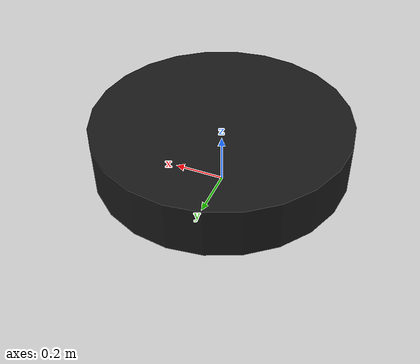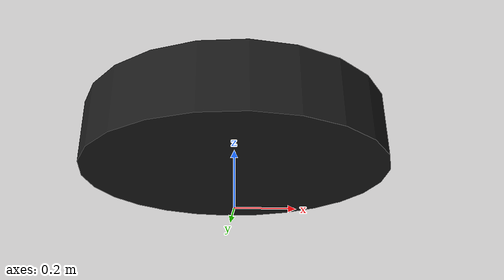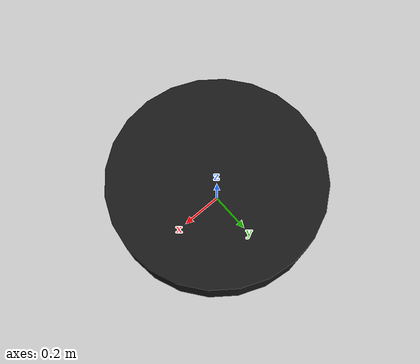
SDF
<?xml version="1.0" ?>
<sdf version="1.9">
  <model name="hexacopter_agricultural">
    <pose>0 0 0.2 0 0 0</pose>
    <self_collide>false</self_collide>
    <static>false</static>

    <link name="base_link">
      <inertial>
        <!-- Requirement: Inertial Matrix reflecting 15kg load -->
        <mass>15.0</mass>
        <inertia>
          <ixx>0.8</ixx>
          <ixy>0</ixy>
          <ixz>0</ixz>
          <iyy>0.8</iyy>
          <iyz>0</iyz>
          <izz>1.5</izz>
        </inertia>
      </inertial>

      <visual name="body_visual">
        <geometry>
          <cylinder>
            <radius>0.5</radius>
            <length>0.2</length>
          </cylinder>
        </geometry>
        <material>
          <ambient>0.1 0.1 0.1 1</ambient>
          <diffuse>0.1 0.1 0.1 1</diffuse>
        </material>
      </visual>
      <collision name="body_collision">
        <geometry>
          <cylinder>
            <radius>0.5</radius>
            <length>0.2</length>
          </cylinder>
        </geometry>
      </collision>

      <!-- Requirement: GPS/RTK Noise -->
      <sensor name="navsat" type="navsat">
        <always_on>1</always_on>
        <update_rate>10</update_rate>
        <topic>navsat</topic>
        <navsat>
          <position_sensing>
            <horizontal>
              <noise type="gaussian">
                <mean>0.0</mean>
                <stddev>0.05</stddev> <!-- RTK precision simulation -->
              </noise>
            </horizontal>
            <vertical>
              <noise type="gaussian">
                <mean>0.0</mean>
                <stddev>0.05</stddev>
              </noise>
            </vertical>
          </position_sensing>
        </navsat>
      </sensor>
    </link>

    <!-- Requirement: Thrust Mapping (6 Motors) -->

    <!-- Motor 0 (CCW) -->
    <link name="rotor_0">
      <pose>0.4 0 0.1 0 0 0</pose>
      <inertial>
        <mass>0.05</mass>
        <inertia>
          <ixx>9.75e-07</ixx>
          <iyy>0.000273104</iyy>
          <izz>0.000274004</izz>
        </inertia>
      </inertial>
    </link>
    <joint name="rotor_0_joint" type="revolute">
      <child>rotor_0</child>
      <parent>base_link</parent>
      <axis>
        <xyz>0 0 1</xyz>
        <limit>
          <lower>-1e+16</lower>
          <upper>1e+16</upper>
        </limit>
      </axis>
    </joint>
    <plugin filename="gz-sim-multicopter-motor-model-system" name="gz::sim::systems::MulticopterMotorModel">
      <robotNamespace>hexacopter_agricultural</robotNamespace>
      <jointName>rotor_0_joint</jointName>
      <linkName>rotor_0</linkName>
      <turningDirection>ccw</turningDirection>
      <timeConstantUp>0.0125</timeConstantUp>
      <timeConstantDown>0.025</timeConstantDown>
      <maxRotVelocity>1100</maxRotVelocity>
      <motorConstant>8.54858e-06</motorConstant>
      <momentConstant>0.06</momentConstant>
      <commandSubTopic>command/motor_speed</commandSubTopic>
      <motorNumber>0</motorNumber>
      <rotorDragCoefficient>0.000175</rotorDragCoefficient>
      <rollingMomentCoefficient>1.0e-6</rollingMomentCoefficient>
    </plugin>

    <!-- Motor 1 (CW) -->
    <link name="rotor_1">
      <pose>0.2 0.346 0.1 0 0 0</pose>
      <inertial>
        <mass>0.05</mass>
        <inertia>
          <ixx>9.75e-07</ixx>
          <iyy>0.000273104</iyy>
          <izz>0.000274004</izz>
        </inertia>
      </inertial>
    </link>
    <joint name="rotor_1_joint" type="revolute">
      <child>rotor_1</child>
      <parent>base_link</parent>
      <axis>
        <xyz>0 0 1</xyz>
        <limit>
          <lower>-1e+16</lower>
          <upper>1e+16</upper>
        </limit>
      </axis>
    </joint>
    <plugin filename="gz-sim-multicopter-motor-model-system" name="gz::sim::systems::MulticopterMotorModel">
      <robotNamespace>hexacopter_agricultural</robotNamespace>
      <jointName>rotor_1_joint</jointName>
      <linkName>rotor_1</linkName>
      <turningDirection>cw</turningDirection>
      <timeConstantUp>0.0125</timeConstantUp>
      <timeConstantDown>0.025</timeConstantDown>
      <maxRotVelocity>1100</maxRotVelocity>
      <motorConstant>8.54858e-06</motorConstant>
      <momentConstant>0.06</momentConstant>
      <commandSubTopic>command/motor_speed</commandSubTopic>
      <motorNumber>1</motorNumber>
      <rotorDragCoefficient>0.000175</rotorDragCoefficient>
      <rollingMomentCoefficient>1.0e-6</rollingMomentCoefficient>
    </plugin>

    <!-- Motor 2 (CCW) -->
    <link name="rotor_2">
      <pose>-0.2 0.346 0.1 0 0 0</pose>
      <inertial>
        <mass>0.05</mass>
        <inertia>
          <ixx>9.75e-07</ixx>
          <iyy>0.000273104</iyy>
          <izz>0.000274004</izz>
        </inertia>
      </inertial>
    </link>
    <joint name="rotor_2_joint" type="revolute">
      <child>rotor_2</child>
      <parent>base_link</parent>
      <axis>
        <xyz>0 0 1</xyz>
        <limit>
          <lower>-1e+16</lower>
          <upper>1e+16</upper>
        </limit>
      </axis>
    </joint>
    <plugin filename="gz-sim-multicopter-motor-model-system" name="gz::sim::systems::MulticopterMotorModel">
      <robotNamespace>hexacopter_agricultural</robotNamespace>
      <jointName>rotor_2_joint</jointName>
      <linkName>rotor_2</linkName>
      <turningDirection>ccw</turningDirection>
      <timeConstantUp>0.0125</timeConstantUp>
      <timeConstantDown>0.025</timeConstantDown>
      <maxRotVelocity>1100</maxRotVelocity>
      <motorConstant>8.54858e-06</motorConstant>
      <momentConstant>0.06</momentConstant>
      <commandSubTopic>command/motor_speed</commandSubTopic>
      <motorNumber>2</motorNumber>
      <rotorDragCoefficient>0.000175</rotorDragCoefficient>
      <rollingMomentCoefficient>1.0e-6</rollingMomentCoefficient>
    </plugin>

    <!-- Motor 3 (CW) -->
    <link name="rotor_3">
      <pose>-0.4 0 0.1 0 0 0</pose>
      <inertial>
        <mass>0.05</mass>
        <inertia>
          <ixx>9.75e-07</ixx>
          <iyy>0.000273104</iyy>
          <izz>0.000274004</izz>
        </inertia>
      </inertial>
    </link>
    <joint name="rotor_3_joint" type="revolute">
      <child>rotor_3</child>
      <parent>base_link</parent>
      <axis>
        <xyz>0 0 1</xyz>
        <limit>
          <lower>-1e+16</lower>
          <upper>1e+16</upper>
        </limit>
      </axis>
    </joint>
    <plugin filename="gz-sim-multicopter-motor-model-system" name="gz::sim::systems::MulticopterMotorModel">
      <robotNamespace>hexacopter_agricultural</robotNamespace>
      <jointName>rotor_3_joint</jointName>
      <linkName>rotor_3</linkName>
      <turningDirection>cw</turningDirection>
      <timeConstantUp>0.0125</timeConstantUp>
      <timeConstantDown>0.025</timeConstantDown>
      <maxRotVelocity>1100</maxRotVelocity>
      <motorConstant>8.54858e-06</motorConstant>
      <momentConstant>0.06</momentConstant>
      <commandSubTopic>command/motor_speed</commandSubTopic>
      <motorNumber>3</motorNumber>
      <rotorDragCoefficient>0.000175</rotorDragCoefficient>
      <rollingMomentCoefficient>1.0e-6</rollingMomentCoefficient>
    </plugin>

    <!-- Motor 4 (CCW) -->
    <link name="rotor_4">
      <pose>-0.2 -0.346 0.1 0 0 0</pose>
      <inertial>
        <mass>0.05</mass>
        <inertia>
          <ixx>9.75e-07</ixx>
          <iyy>0.000273104</iyy>
          <izz>0.000274004</izz>
        </inertia>
      </inertial>
    </link>
    <joint name="rotor_4_joint" type="revolute">
      <child>rotor_4</child>
      <parent>base_link</parent>
      <axis>
        <xyz>0 0 1</xyz>
        <limit>
          <lower>-1e+16</lower>
          <upper>1e+16</upper>
        </limit>
      </axis>
    </joint>
    <plugin filename="gz-sim-multicopter-motor-model-system" name="gz::sim::systems::MulticopterMotorModel">
      <robotNamespace>hexacopter_agricultural</robotNamespace>
      <jointName>rotor_4_joint</jointName>
      <linkName>rotor_4</linkName>
      <turningDirection>ccw</turningDirection>
      <timeConstantUp>0.0125</timeConstantUp>
      <timeConstantDown>0.025</timeConstantDown>
      <maxRotVelocity>1100</maxRotVelocity>
      <motorConstant>8.54858e-06</motorConstant>
      <momentConstant>0.06</momentConstant>
      <commandSubTopic>command/motor_speed</commandSubTopic>
      <motorNumber>4</motorNumber>
      <rotorDragCoefficient>0.000175</rotorDragCoefficient>
      <rollingMomentCoefficient>1.0e-6</rollingMomentCoefficient>
    </plugin>

    <!-- Motor 5 (CW) -->
    <link name="rotor_5">
      <pose>0.2 -0.346 0.1 0 0 0</pose>
      <inertial>
        <mass>0.05</mass>
        <inertia>
          <ixx>9.75e-07</ixx>
          <iyy>0.000273104</iyy>
          <izz>0.000274004</izz>
        </inertia>
      </inertial>
    </link>
    <joint name="rotor_5_joint" type="revolute">
      <child>rotor_5</child>
      <parent>base_link</parent>
      <axis>
        <xyz>0 0 1</xyz>
        <limit>
          <lower>-1e+16</lower>
          <upper>1e+16</upper>
        </limit>
      </axis>
    </joint>
    <plugin filename="gz-sim-multicopter-motor-model-system" name="gz::sim::systems::MulticopterMotorModel">
      <robotNamespace>hexacopter_agricultural</robotNamespace>
      <jointName>rotor_5_joint</jointName>
      <linkName>rotor_5</linkName>
      <turningDirection>cw</turningDirection>
      <timeConstantUp>0.0125</timeConstantUp>
      <timeConstantDown>0.025</timeConstantDown>
      <maxRotVelocity>1100</maxRotVelocity>
      <motorConstant>8.54858e-06</motorConstant>
      <momentConstant>0.06</momentConstant>
      <commandSubTopic>command/motor_speed</commandSubTopic>
      <motorNumber>5</motorNumber>
      <rotorDragCoefficient>0.000175</rotorDragCoefficient>
      <rollingMomentCoefficient>1.0e-6</rollingMomentCoefficient>
    </plugin>

  </model>
</sdf>
